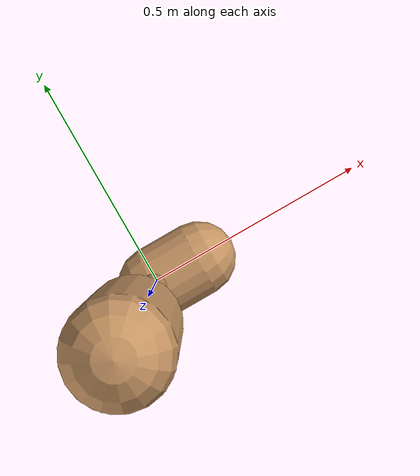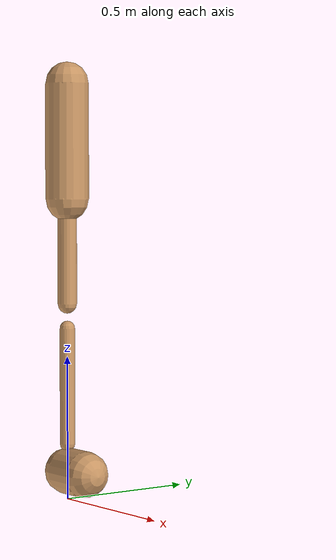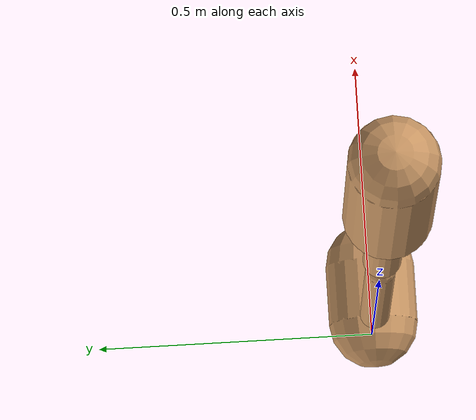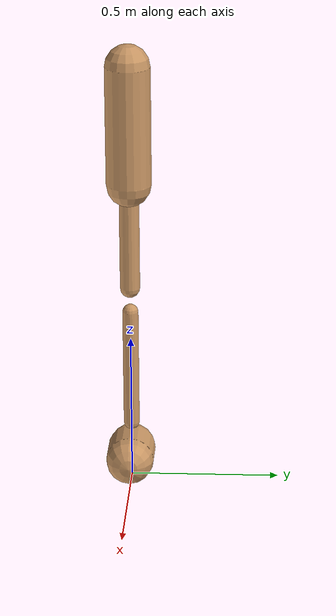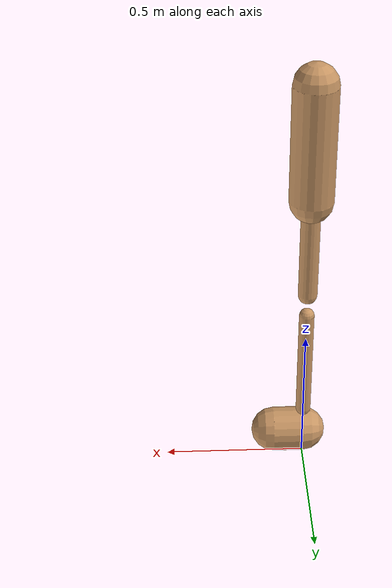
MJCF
<mujoco model="walker2d">
  <compiler angle="degree" coordinate="global" inertiafromgeom="true" />
  <default>
    <joint armature="0.01" damping=".1" limited="true" />
    <geom conaffinity="0" condim="3" contype="1" density="1000" friction="0.8 .1 .1" rgba="0.8 0.6 .4 1" />
  </default>
  <option integrator="RK4" timestep="0.002" />
  <worldbody>

    <body name="torso" pos="0 0 -0.18124554144543015">
      <joint armature="0" axis="1 0 0" damping="0" limited="false" name="ignorex" pos="0 0 0" stiffness="0" type="slide" />
      <joint armature="0" axis="0 0 1" damping="0" limited="false" name="ignorez" pos="0 0 0" ref="1.25" stiffness="0" type="slide" />
      <joint armature="0" axis="0 1 0" damping="0" limited="false" name="ignorey" pos="0 0 0" stiffness="0" type="hinge" />
      <geom fromto="0 0 1.45 0 0 1.05" name="torso_geom" size="0.07548106446631622" type="capsule" />
      <body name="thigh">
        <joint axis="0 -1 0" name="thigh_joint" pos="0 0 1.05" range="-150 0" type="hinge" />
        <geom fromto="0.0 0.0 1.05 0.0 0.0 0.6858531512109932" name="thigh_geom" size="0.03342149429298298" type="capsule" />
        <body name="leg" pos="0.0 0.0 0.08585315121099324">
          <joint axis="0 -1 0" name="leg_joint" pos="0 0 0.6" range="-150 0" type="hinge" />
          <geom fromto="0.0 0.0 0.6 0.0 0.0 0.1953923902344369" name="leg_geom" size="0.026737195434386383" type="capsule" />
          <body name="foot" pos="0.0 0.0 0.09539239023443691">
            <joint axis="0 -1 0" name="foot_joint" pos="0 0 0.1" range="-45 45" type="hinge" />
            <geom fromto="0.0 0.0 0.1 0.10737097430154666 0.0 0.1" name="foot_geom" size="0.08028481207779185" type="capsule" />
          </body>
        </body>
      </body>

      <body name="thigh_left">
        <joint axis="0 -1 0" name="thigh_left_joint" pos="0 0 1.05" range="-150 0" type="hinge" />
        <geom fromto="0.0 0.0 1.05 0.0 0.0 0.6858531512109932" name="thigh_left_geom" rgba=".7 .3 .6 1" size="0.03342149429298298" type="capsule" />
        <body name="leg_left" pos="0.0 0.0 0.08585315121099324">
          <joint axis="0 -1 0" name="leg_left_joint" pos="0 0 0.6" range="-150 0" type="hinge" />
          <geom fromto="0.0 0.0 0.6 0.0 0.0 0.1953923902344369" name="leg_left_geom" rgba=".7 .3 .6 1" size="0.026737195434386383" type="capsule" />
          <body name="foot_left" pos="0.0 0.0 0.09539239023443691">
            <joint axis="0 -1 0" name="foot_left_joint" pos="0 0 0.1" range="-45 45" type="hinge" />
            <geom fromto="0.0 0.0 0.1 0.10737097430154666 0.0 0.1" name="foot_left_geom" rgba=".7 .3 .6 1" size="0.08028481207779185" type="capsule" />
          </body>
        </body>
      </body>
    </body>
  </worldbody>
  <actuator>

    <motor ctrllimited="true" ctrlrange="-1.0 1.0" gear="100" joint="thigh_joint" />
    <motor ctrllimited="true" ctrlrange="-1.0 1.0" gear="100" joint="leg_joint" />
    <motor ctrllimited="true" ctrlrange="-1.0 1.0" gear="100" joint="foot_joint" />
    <motor ctrllimited="true" ctrlrange="-1.0 1.0" gear="100" joint="thigh_left_joint" />
    <motor ctrllimited="true" ctrlrange="-1.0 1.0" gear="100" joint="leg_left_joint" />
    <motor ctrllimited="true" ctrlrange="-1.0 1.0" gear="100" joint="foot_left_joint" />

  </actuator>
</mujoco>
